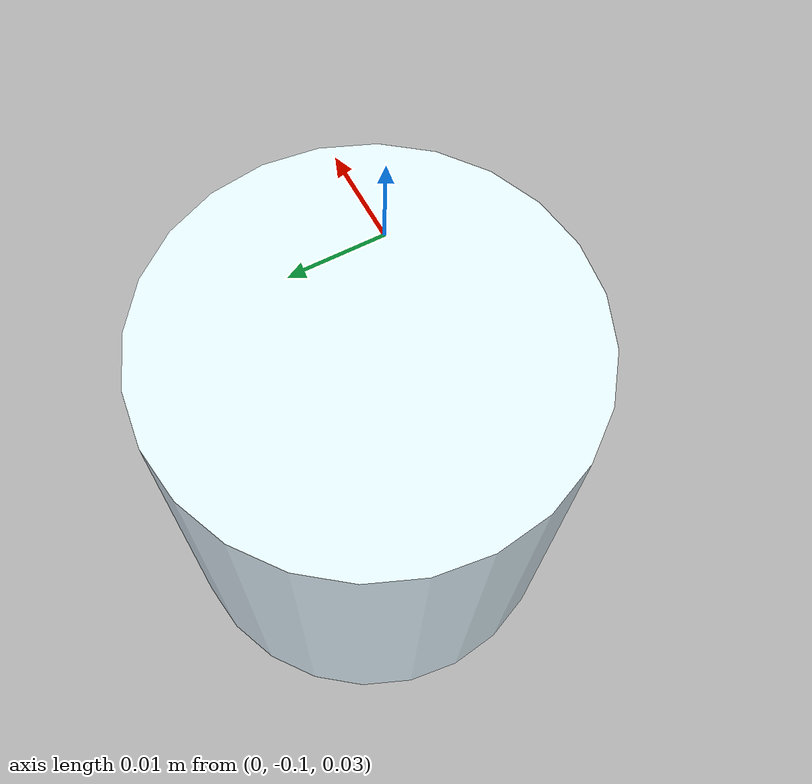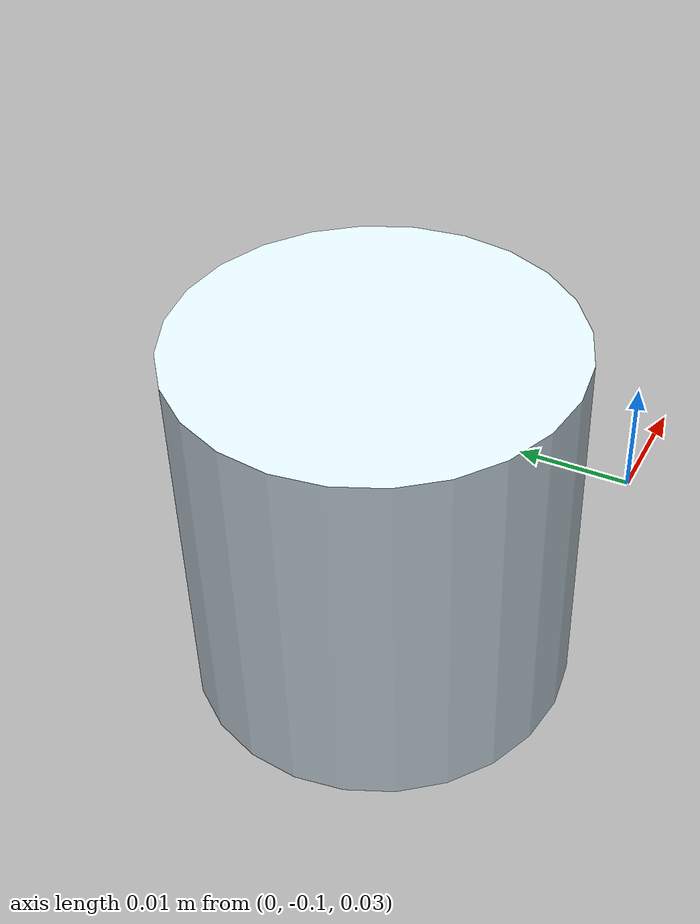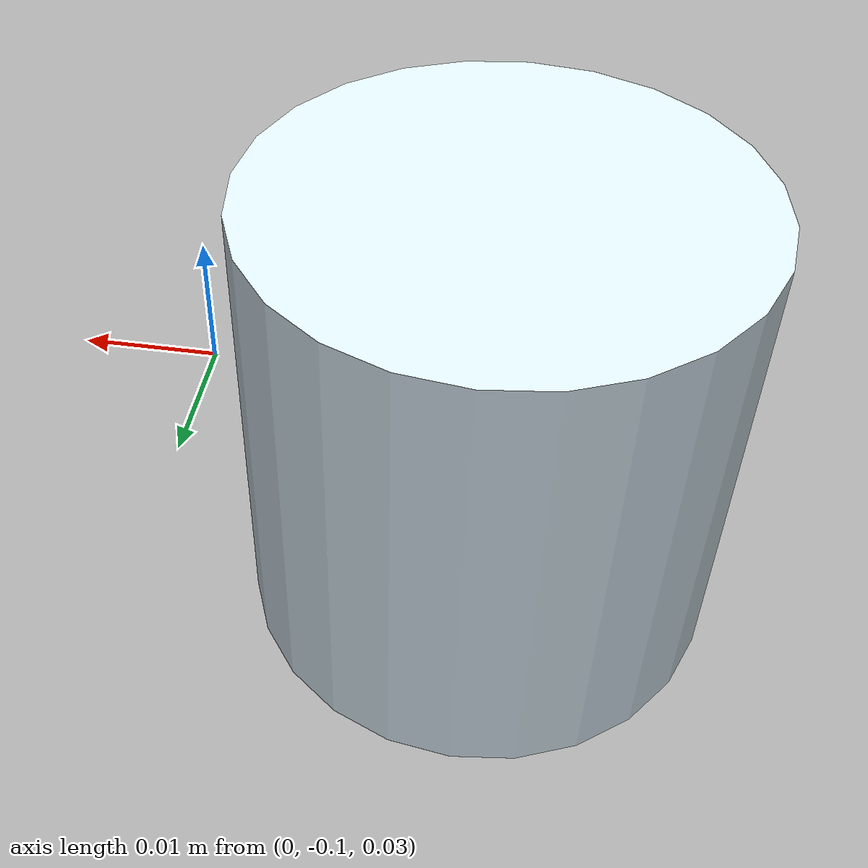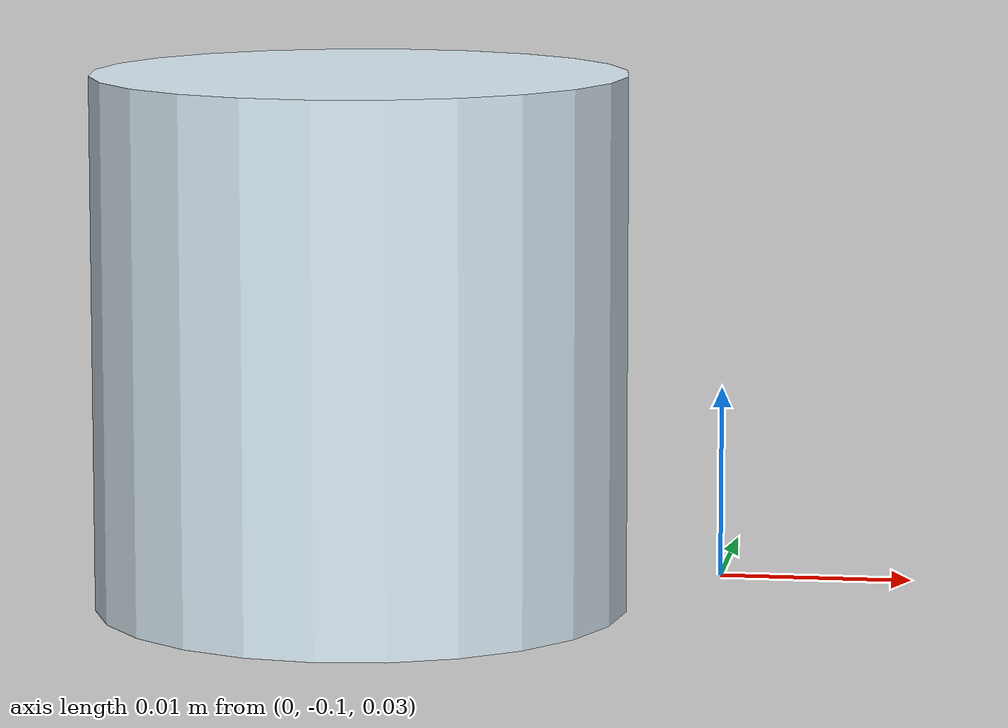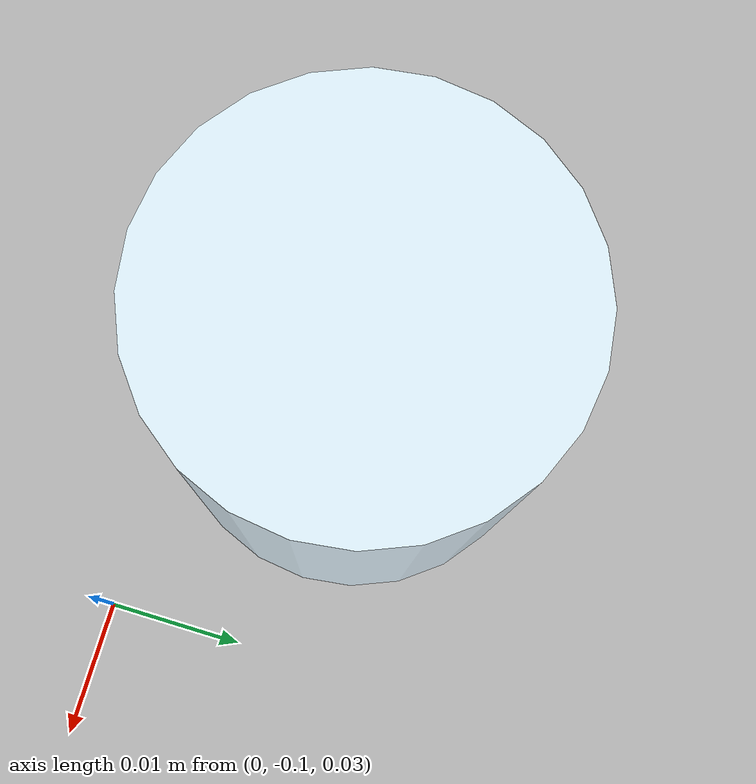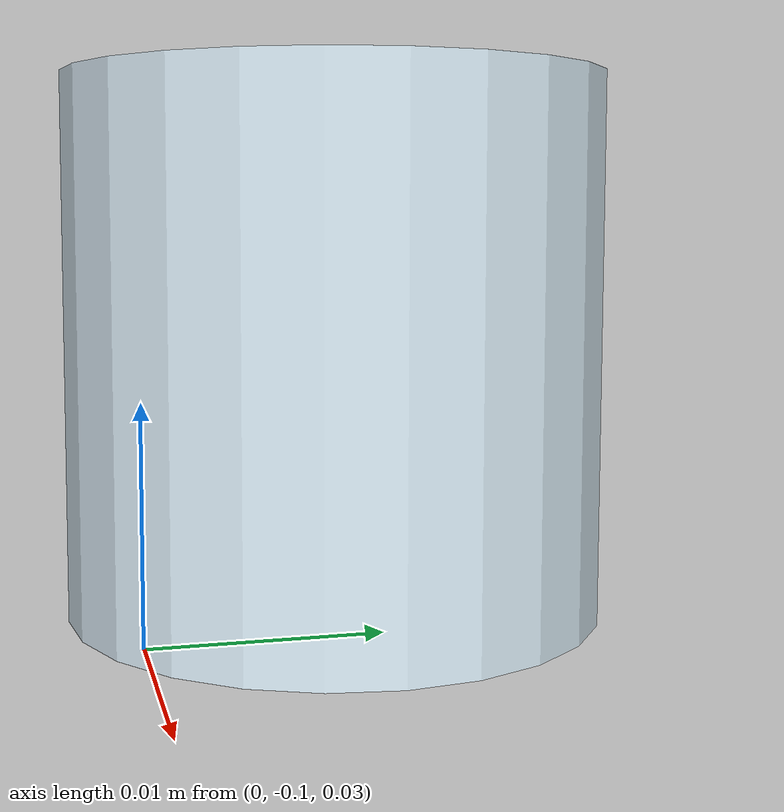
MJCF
<mujoco model="montessori_object_6">
    <compiler angle="radian" meshdir="." autolimits="true" inertiafromgeom="true"/>
    <default>
        <default class="montessori_object_6_collision">
            <geom rgba="0.87 0.94 0.98 1.0"/>
        </default>
    </default>
    <worldbody>
        <body name="montessori_object_6" pos="-0.0215 -0.087 0.04" quat="1 0 0 0">
            <freejoint/>
            <inertial mass="0.006096568424254656" pos="0.0 0.0 0.0" quat="1.0 0.0 0.0 0.0" diaginertia="3.485560569060908e-07 3.485560569060908e-07 2.987623304306908e-07"/>
			<geom name="MontessoriObject6" type="cylinder" size="0.015 0.015" class="montessori_object_6_collision"/>
        </body>
    </worldbody>
</mujoco>
